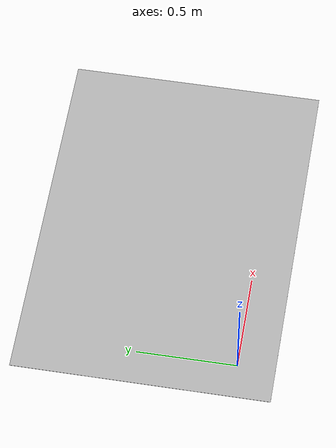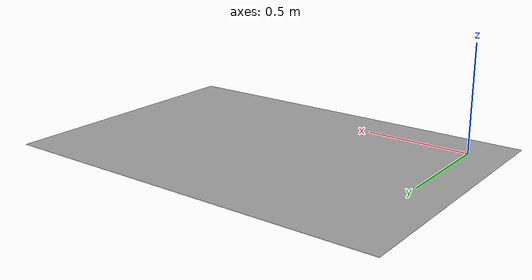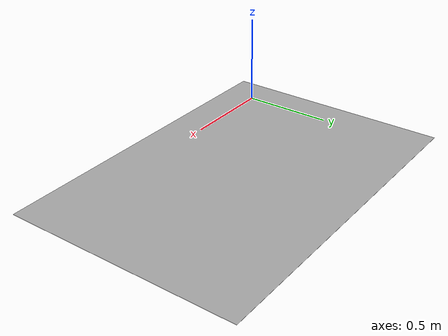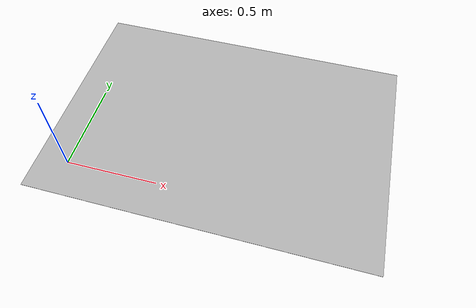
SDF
<?xml version="1.0" ?>
<sdf version='1.6'>
  <world name='default'>
    <light name='sun' type='directional'>
      <!--Shadows are not allowed in that scene-->
      <cast_shadows>0</cast_shadows>
      <pose frame=''>0 0 10 0 -0 0</pose>
      <diffuse>0.8 0.8 0.8 1</diffuse>
      <specular>0.1 0.1 0.1 1</specular>
      <attenuation>
        <range>1000</range>
        <constant>0.9</constant>
        <linear>0.01</linear>
        <quadratic>0.001</quadratic>
      </attenuation>
      <direction>-0.5 0.5 -1</direction>
    </light>
    <include>
      <uri>model://gridworld_project</uri>
    </include>
    <gravity>0 0 -9.8</gravity>
    <magnetic_field>6e-06 2.3e-05 -4.2e-05</magnetic_field>
    <atmosphere type='adiabatic'/>
    <physics name='default_physics' default='0' type='ode'>
      <max_step_size>0.001</max_step_size>
      <real_time_factor>1</real_time_factor>
      <real_time_update_rate>1000</real_time_update_rate>
    </physics>
    <scene>
      <ambient>0.4 0.4 0.4 1</ambient>
      <background>0.7 0.7 0.7 1</background>
      <shadows>0</shadows>
    </scene>
    <spherical_coordinates>
      <surface_model>EARTH_WGS84</surface_model>
      <latitude_deg>0</latitude_deg>
      <longitude_deg>0</longitude_deg>
      <elevation>0</elevation>
      <heading_deg>0</heading_deg>
    </spherical_coordinates>
    <gui fullscreen='0'>
      <camera name='user_camera'>
        <pose frame=''>1 -1.5 2 0 0.785398163397 1.57079632679</pose>
        <view_controller>orbit</view_controller>
        <projection_type>perspective</projection_type>
      </camera>
    </gui>
  </world>
</sdf>

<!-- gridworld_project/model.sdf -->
<sdf version="1.4">
<model name="gridworld_project">
  <static>true</static>
    <link name="link">
      <pose>0.75 0.457 0 0 0 0</pose>
      <collision name="collision">
        <geometry>
          <plane>
            <normal>0 0 1</normal>
            <size>1.85 1.29</size>
          </plane>
        </geometry>
        <surface>
          <friction>
            <ode>
              <mu>100</mu>
              <mu2>50</mu2>
            </ode>
          </friction>
        </surface>
      </collision>
      <visual name="visual">
        <cast_shadows>false</cast_shadows>
        <geometry>
          <plane>
            <normal>0 0 1</normal>
            <size>1.85 1.29</size>
          </plane>
        </geometry>
        <material>
          <script>
            <uri>model://gridworld_project/materials/gridworld.material</uri>
            <name>GridworldProject/Image</name>
          </script>
        </material>
      </visual>
    </link>
  </model>
</sdf>
